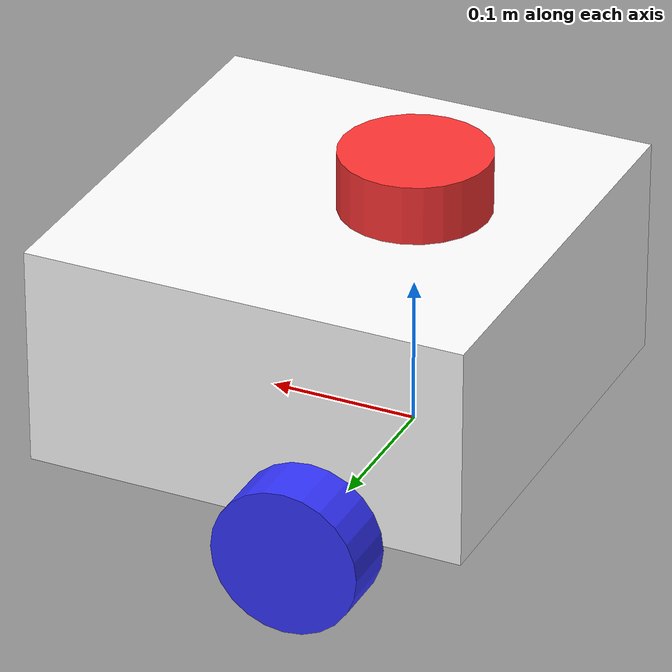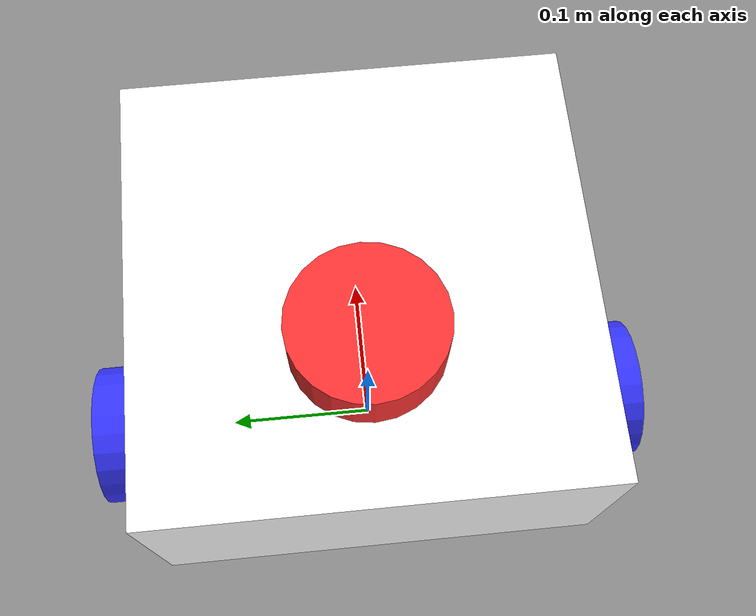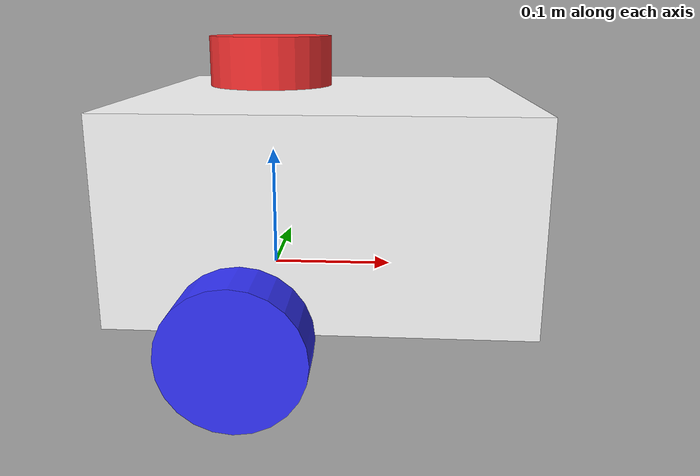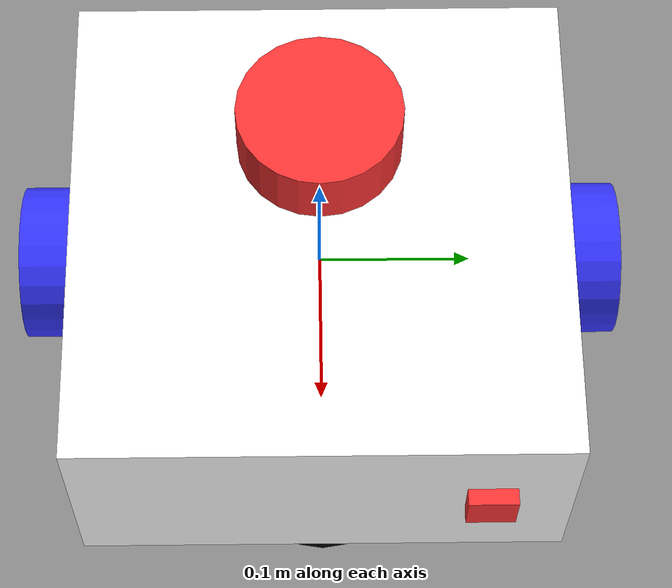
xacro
<?xml version="1.0"?>
<robot xmlns:xacro="http://www.ros.org/wiki/xacro"  name="robot">

    <xacro:arg name="use_ros2_control" default="true"/>

    <xacro:include filename="robot_core.xacro"/>

    <xacro:if value="$(arg use_ros2_control)">
        <xacro:include filename="ros2_control.xacro"/>
    </xacro:if>
    <!-- else -->
    <xacro:unless value="$(arg use_ros2_control)">
        <xacro:include filename="gazebo_control.xacro"/>
    </xacro:unless>

    <xacro:include filename="lidar.xacro"/>

    <xacro:include filename="depth_camera.xacro"/>

</robot>

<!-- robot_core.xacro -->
<robot xmlns:xacro="http://www.ros.org/wiki/xacro">

    <xacro:include filename="inertial_macros.xacro"/>
    <xacro:include filename="colors.xacro"/>

    <!-- Base Link -->
    <link name="base_link">
    </link>

    <!-- this is needed for slam -->
    <joint name="base_footprint_joint" type="fixed">
        <parent link="base_link"/>
        <child link="base_footprint"/>
        <origin xyz="0.0 0.0 0.0" rpy="0.0 0.0 0.0"/>
    </joint>

    <link name="base_footprint">
    </link>

    <!-- Chassis link-->
    <joint name="chassis_joint" type="fixed">
        <parent link="base_link"/>
        <child link="chassis"/>
        <origin xyz="-0.1 0 0"/>
    </joint>
    <link name="chassis">
        <visual>
            <origin xyz="0.15 0 0.075"/>
            <geometry>
                <box size="0.3 0.3 0.15"/>
            </geometry>
            <material name="white"/>
        </visual>
        <collision>
            <origin xyz="0.15 0 0.075"/>
            <geometry>
                <box size="0.3 0.3 0.15"/>
            </geometry>
        </collision>
        <xacro:inertial_box mass="0.5" x="0.3" y="0.3" z="0.15">
            <origin xyz="0.15 0 0.075" rpy="0 0 0"/>
        </xacro:inertial_box>
    </link>
    <gazebo reference="chassis">
        <material>Gazebo/White</material>
    </gazebo>

    <!-- Left wheel link -->
    <joint name="left_wheel_joint" type="continuous">
        <parent link="base_link"/>
        <child link="left_wheel"/>
        <origin xyz="0.0 0.175 0.0" rpy="-${pi/2} 0 0"/>
        <axis xyz="0.0 0.0 1.0"/>
    </joint>
    <link name="left_wheel">
        <visual>
            <geometry>
                <cylinder radius="0.05" length="0.04"/>
            </geometry>
            <material name="blue"/>
        </visual>
        <collision>
            <geometry>
                <cylinder radius="0.05" length="0.04"/>
            </geometry>
        </collision>
        <xacro:inertial_cylinder mass="0.1" length="0.04" radius="0.05">
            <origin xyz="0 0 0" rpy="0 0 0"/>
        </xacro:inertial_cylinder>
    </link>
    <gazebo reference="left_wheel">
        <material>Gazebo/Blue</material>
    </gazebo>

    <!-- Right wheel link -->
    <joint name="right_wheel_joint" type="continuous">
        <parent link="base_link"/>
        <child link="right_wheel"/>
        <origin xyz="0.0 -0.175 0.0" rpy="${pi/2} 0 0"/>
        <axis xyz="0.0 0.0 -1.0"/>
    </joint>
    <link name="right_wheel">
        <visual>
            <geometry>
                <cylinder radius="0.05" length="0.04"/>
            </geometry>
            <material name="blue"/>
        </visual>
        <collision>
            <geometry>
                <cylinder radius="0.05" length="0.04"/>
            </geometry>
        </collision>
        <xacro:inertial_cylinder mass="0.1" length="0.04" radius="0.05">
            <origin xyz="0 0 0" rpy="0 0 0"/>
        </xacro:inertial_cylinder>
    </link>
    <gazebo reference="right_wheel">
        <material>Gazebo/Blue</material>
    </gazebo>

    <joint name="caster_wheel_joint" type="fixed">
        <parent link="chassis"/>
        <child link="caster_wheel"/>
        <origin xyz="0.25 0.0 0.0"/>
    </joint>
    <link name="caster_wheel">
        <visual>
            <geometry>
                <sphere radius="0.05"/>
            </geometry>
            <material name="black"/>
        </visual>
        <collision>
            <geometry>
                <sphere radius="0.05"/>
            </geometry>
        </collision>
        <xacro:inertial_sphere mass="0.1" radius="0.05">
            <origin xyz="0 0 0" rpy="0 0 0"/>
        </xacro:inertial_sphere>
    </link>
    <gazebo reference="caster_wheel">
        <material>Gazebo/Black</material>
        <mu1 value="0.001"/>
        <mu2 value="0.002"/>
    </gazebo>
</robot>

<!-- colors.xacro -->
<robot xmlns:xacro="http://www.ros.org/wiki/xacro">

    <material name="white">
        <color rgba="1 1 1 1"/>
    </material>

    <material name="orange">
        <color rgba="1 0.3 0.1 1"/>
    </material>

    <material name="blue">
        <color rgba="0.2 0.2 1 1"/>
    </material>

    <material name="black">
        <color rgba="0 0 0 1"/>
    </material>

    <material name="red">
        <color rgba="1 0.2 0.2 1"/>
    </material>
</robot>

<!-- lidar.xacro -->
<robot xmlns:xacro="http://www.ros.org/wiki/xacro">

    <joint name="lidar_joint" type="fixed">
        <parent link="chassis"/>
        <child link="lidar_frame"/>
        <origin xyz="0.1 0.0 0.175" rpy="0 0 0"/>
    </joint>

    <link name="lidar_frame">
        <visual>
            <geometry>
                <cylinder radius="0.05" length="0.04"/>
            </geometry>
            <material name="red"/>
        </visual>
        <collision>
            <geometry>
                <cylinder radius="0.05" length="0.04"/>
            </geometry>
        </collision>
        <xacro:inertial_cylinder mass="0.1" length="0.04" radius="0.05">
            <origin xyz="0 0 0" rpy="0 0 0"/>
        </xacro:inertial_cylinder>
    </link>

    <gazebo reference="lidar_frame">
        <material>Gazebo/Red</material>
        <sensor name="lidar" type="ray">
            <pose> 0 0 0 0 0 0 </pose>
            <visualize>false</visualize>
            <update_rate>10</update_rate>
            <ray>
                <scan>
                    <horizontal>
                        <samples>360</samples>
                        <min_angle>-3.14</min_angle>
                        <max_angle>3.14</max_angle>
                    </horizontal>
                </scan>
                <range>
                    <min>0.3</min>
                    <max>12</max>
                </range>
            </ray>
            <plugin name="lidar_controller" filename="libgazebo_ros_ray_sensor.so">
                <ros>
                    <argument>~/out:=scan</argument>
                </ros>
                <output_type>sensor_msgs/LaserScan</output_type>
                <frame_name>lidar_frame</frame_name>
            </plugin>
        </sensor>
    </gazebo>
</robot>

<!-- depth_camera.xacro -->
<robot xmlns:xacro="http://www.ros.org/wiki/xacro">

    <joint name="depth_camera_joint" type="fixed">
        <parent link="chassis"/>
        <child link="depth_camera_link"/>
        <origin xyz="0.305 0.1 0.08" rpy="0 0 0"/>
    </joint>

    <link name="depth_camera_link">
        <visual>
            <geometry>
                <box size="0.01 0.03 0.03"/>
            </geometry>
            <material name="red"/>
        </visual>
    </link>

    <joint name="depth_camera_optical_joint" type="fixed">
        <parent link="depth_camera_link"/>
        <child link="depth_camera_link_optical"/>
        <origin xyz="0 0 0" rpy="${-pi/2} 0 ${-pi/2}"/>
    </joint>

    <link name="depth_camera_link_optical"></link>

    <gazebo reference="depth_camera_link">
        <material>Gazebo/Red</material>
        <sensor name="depth_camera" type="depth">
            <pose> 0 0 0 0 0 0 </pose>
            <visualize>true</visualize>
            <update_rate>10</update_rate>
            <camera>
                <horizontal_fov>1.089</horizontal_fov>
                <image>
                    <format>B8G8R8</format>
                    <width>640</width>
                    <height>480</height>
                </image>
                <clip>
                    <near>0.05</near>
                    <far>8.0</far>
                </clip>
            </camera>
            <plugin name="depth_camera_controller" filename="libgazebo_ros_camera.so">
                <frame_name>depth_camera_link_optical</frame_name>
                <min_depth>0.1</min_depth>
                <max_depth>100.0</max_depth>
            </plugin>
        </sensor>
    </gazebo>
</robot>
